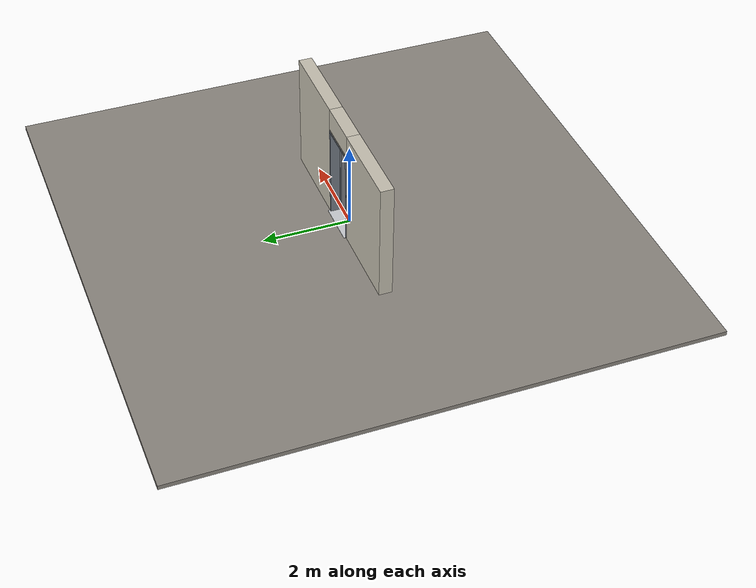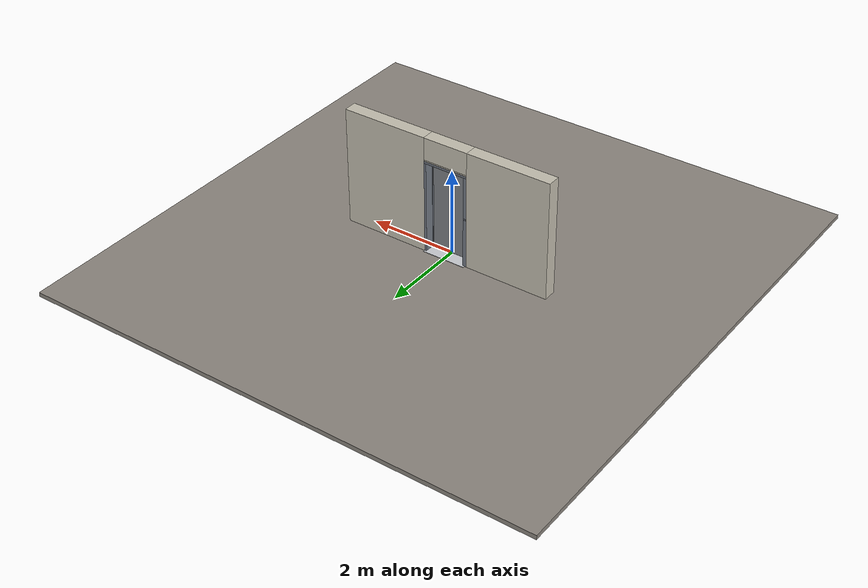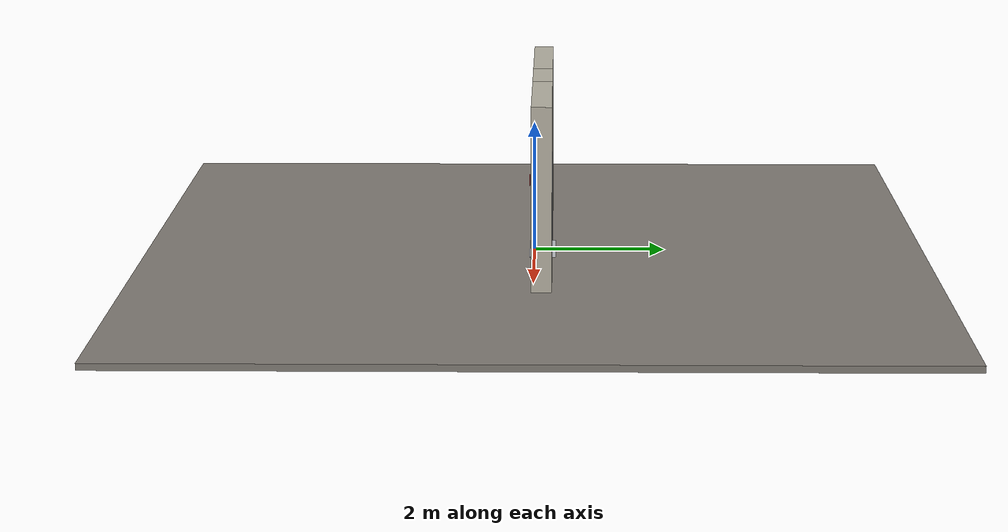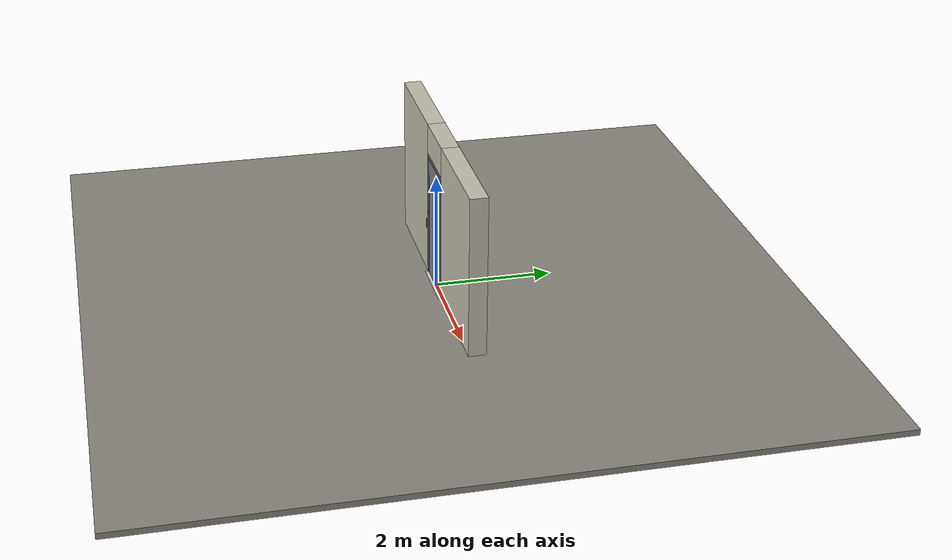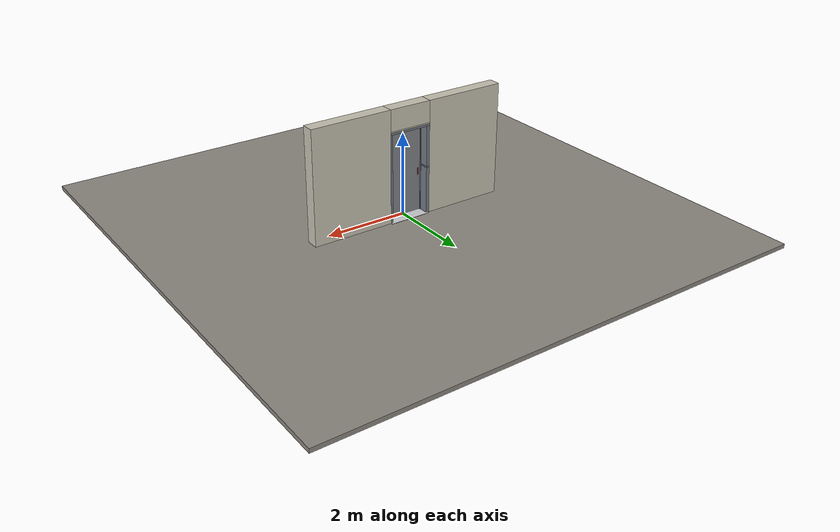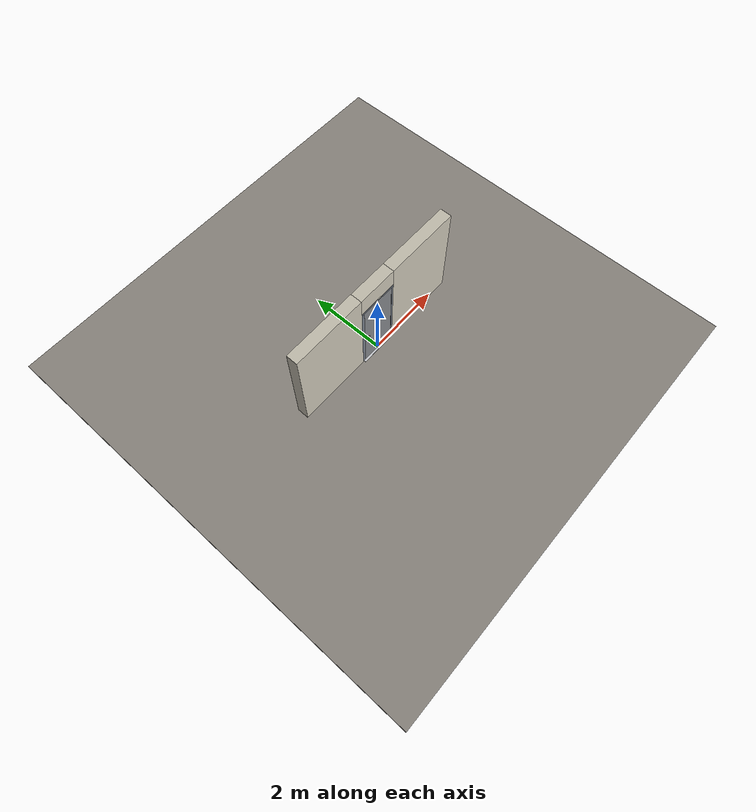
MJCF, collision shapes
<?xml version="1.0" ?>
<mujoco model="db0428_swing_single_minimal">
  <compiler angle="radian" meshdir="../../hardware" texturedir="../../textures" autolimits="true" inertiafromgeom="false"/>
  <option timestep="0.002" integrator="implicitfast" cone="elliptic" impratio="10" noslip_iterations="3">
    <flag multiccd="enable"/>
  </option>
  <size memory="16M"/>
  <default>
    <geom condim="4" solref="0.005 1" solimp="0.95 0.99 0.001"/>
    <joint solreflimit="0.005 1" solimplimit="0.95 0.99 0.001"/>
    <tendon solreflimit="0.005 1"/>
    <equality solref="0.002 1"/>
  </default>
  <visual>
    <headlight ambient="0.4 0.4 0.4" diffuse="0.7 0.7 0.7" specular="0.2 0.2 0.2"/>
    <quality shadowsize="4096"/>
    <map znear="0.01" zfar="60"/>
  </visual>
  <asset>
    <mesh name="pull_1e5d69a91a" file="pull_1e5d69a91a.obj"/>
    <material name="mat_floor" rgba="0.55 0.53 0.5 1" specular="0.2" shininess="0.15" reflectance="0"/>
    <material name="mat_wall" rgba="0.78 0.76 0.7 1" specular="0.2" shininess="0.1" reflectance="0"/>
    <material name="mat_leaf" rgba="0.5 0.51 0.53 1" specular="0.23" shininess="0.51" reflectance="0.02"/>
    <material name="mat_leaf_louver" rgba="0.425 0.433 0.451 1" specular="0.2" shininess="0.4" reflectance="0"/>
    <material name="mat_hinge" rgba="0.65 0.66 0.68 1" specular="0.74" shininess="0.5" reflectance="0.36"/>
    <material name="mat_op_stainless" rgba="0.75 0.76 0.77 1" specular="0.8" shininess="0.65" reflectance="0.4"/>
    <material name="mat_deadbolt" rgba="0.85 0.66 0.3 1" specular="0.8" shininess="0.75" reflectance="0.4"/>
    <material name="mat_frame" rgba="0.45 0.48 0.52 1" specular="0.32" shininess="0.6" reflectance="0.08"/>
    <material name="mat_seal" rgba="0.1 0.1 0.1 1" specular="0.2" shininess="0.1" reflectance="0"/>
    <material name="mat_threshold" rgba="0.8 0.81 0.83 1" specular="0.8" shininess="0.6" reflectance="0.4"/>
    <material name="mat_kick" rgba="0.75 0.76 0.77 1" specular="0.8" shininess="0.65" reflectance="0.4"/>
    <material name="mat_placard" rgba="0.95 0.75 0.05 1" specular="0.2" shininess="0.5" reflectance="0"/>
    <material name="mat_bumper_stop" rgba="0.08 0.08 0.08 1" specular="0.2" shininess="0.1" reflectance="0"/>
    <material name="mat_stop_base" rgba="0.9 0.9 0.92 1" specular="0.8" shininess="0.9" reflectance="0.4"/>
    <texture name="skybox" type="skybox" builtin="gradient" rgb1="0.6 0.7 0.85" rgb2="0.9 0.92 0.95" width="256" height="256"/>
  </asset>
  <worldbody>
    <light name="sun" pos="1.5 -2.5 4" dir="-0.3 0.5 -0.8" directional="true" diffuse="0.8 0.8 0.8" specular="0.3 0.3 0.3" castshadow="true"/>
    <light name="fill" pos="-1.5 2.5 3" dir="0.3 -0.5 -0.7" directional="true" diffuse="0.35 0.35 0.4" castshadow="false"/>
    <camera name="robot_view" pos="0 -2.516812 1.812087" xyaxes="1 0 0 0 0.26963 0.962964" fovy="52"/>
    <camera name="far_view" pos="0 2.758812 1.812087" xyaxes="-1 0 0 0 -0.26963 0.962964" fovy="52"/>
    <camera name="iso" pos="-2.004737 -2.094762 2.234138" xyaxes="0.741536 -0.670913 0 0.242917 0.268487 0.932151" fovy="46"/>
    <camera name="detail_handle" pos="-0.1715 -0.882 1.296" xyaxes="0.97561 0.219512 0 -0.070934 0.315262 0.94635" fovy="38"/>
    <geom name="floor" type="box" size="6 6 0.05" pos="0 0 -0.05" material="mat_floor" group="0" contype="1" conaffinity="1" friction="0.8 0.005 0.0001" density="2400"/>
    <geom name="wall_left" type="box" size="0.97975 0.15 1.3735" pos="-1.52025 0.121 1.3735" material="mat_wall" group="0" contype="1" conaffinity="1" friction="0.6 0.005 0.0001" density="800"/>
    <geom name="wall_right" type="box" size="0.99475 0.15 1.3735" pos="1.50525 0.121 1.3735" material="mat_wall" group="0" contype="1" conaffinity="1" friction="0.6 0.005 0.0001" density="800"/>
    <geom name="wall_header" type="box" size="0.5255 0.15 0.26" pos="-0.015 0.121 2.487" material="mat_wall" group="0" contype="1" conaffinity="1" friction="0.6 0.005 0.0001" density="800"/>
    <geom name="jamb_hinge" type="box" size="0.025 0.15 1.0735" pos="0.4855 0.121 1.0735" material="mat_frame" group="0" contype="1" conaffinity="1" friction="0.6 0.005 0.0001" density="300"/>
    <geom name="strike_1156_wall_n" type="box" size="0.04 0.13075 0.0155" pos="-0.5005 0.14025 1.156" material="mat_frame" group="0" contype="1" conaffinity="1" friction="0.6 0.005 0.0001" density="300"/>
    <geom name="strike_1156_wall_p" type="box" size="0.04 0.00975 0.0155" pos="-0.5005 -0.01925 1.156" material="mat_frame" group="0" contype="1" conaffinity="1" friction="0.6 0.005 0.0001" density="300"/>
    <geom name="strike_1156_back" type="box" size="0.0253 0.0095 0.0155" pos="-0.5152 0 1.156" material="mat_frame" group="0" contype="1" conaffinity="1" friction="0.6 0.005 0.0001" density="300"/>
    <geom name="jamb_strike_0" type="box" size="0.04 0.15 0.57025" pos="-0.5005 0.121 0.57025" material="mat_frame" group="0" contype="1" conaffinity="1" friction="0.6 0.005 0.0001" density="300"/>
    <geom name="jamb_strike_1" type="box" size="0.04 0.15 0.48775" pos="-0.5005 0.121 1.65925" material="mat_frame" group="0" contype="1" conaffinity="1" friction="0.6 0.005 0.0001" density="300"/>
    <geom name="jamb_head" type="box" size="0.5255 0.15 0.025" pos="-0.015 0.121 2.172" material="mat_frame" group="0" contype="1" conaffinity="1" friction="0.6 0.005 0.0001" density="300"/>
    <geom name="head_stud" type="box" size="0.5255 0.15 0.015" pos="-0.015 0.121 2.212" material="mat_wall" group="0" contype="1" conaffinity="1" friction="0.6 0.005 0.0001" density="500"/>
    <geom name="stop_hinge" type="box" size="0.0055 0.016 1.0735" pos="0.455 0.0385 1.0735" material="mat_frame" group="0" contype="1" conaffinity="1" friction="0.6 0.005 0.0001" density="300"/>
    <geom name="stop_strike" type="box" size="0.0055 0.016 1.0735" pos="-0.455 0.0385 1.0735" material="mat_frame" group="0" contype="1" conaffinity="1" friction="0.6 0.005 0.0001" density="300"/>
    <geom name="stop_head" type="box" size="0.4605 0.016 0.0055" pos="0 0.0385 2.1415" material="mat_frame" group="0" contype="1" conaffinity="1" friction="0.6 0.005 0.0001" density="300"/>
    <geom name="threshold" type="box" size="0.5105 0.2 0.004" pos="0 0.121 0.004" material="mat_threshold" group="0" contype="1" conaffinity="1" friction="0.6 0.005 0.0001" density="2700"/>
    <site name="approach_point" pos="0 -1.5 0" quat="1 0 0 0" size="0.05" rgba="0.2 0.9 0.2 0.5" group="4"/>
    <site name="goal_point" pos="0 1.5 0" quat="1 0 0 0" size="0.05" rgba="0.2 0.9 0.2 0.5" group="4"/>
    <site name="door_plane_center" pos="0 0 1.0735" quat="1 0 0 0" size="0.02" rgba="0.2 0.9 0.2 0.5" group="4"/>
    <body name="leaf" pos="0.4605 0 0">
      <inertial pos="-0.466569 0 1.07488" mass="49.950814" quat="0.50032 0.50032 -0.49968 0.49968" diaginertia="3.538999937 18.62171117 22.134400077"/>
      <joint name="leaf_hinge" type="hinge" axis="0 0 1" pos="-0.003 -0.029 0" limited="true" range="0 1.570796" solreflimit="0.02 1" damping="0.318966" frictionloss="1.630428" armature="0.02"/>
      <geom name="leaf_slab" type="box" size="0.457 0.022 1.067" pos="-0.46 0 1.076" material="mat_leaf" group="0" contype="1" conaffinity="1" friction="0.4 0.005 0.0001" density="1"/>
      <geom name="leaf_pull_n" type="mesh" mesh="pull_1e5d69a91a" pos="-0.812 -0.022 1.016" quat="0 0 -0.707107 0.707107" material="mat_op_stainless" group="1" contype="0" conaffinity="0" density="3000"/>
      <geom name="leaf_pull_col_n" type="capsule" size="0.0095 0.08" pos="-0.812 -0.082 1.016" material="mat_op_stainless" group="3" contype="1" conaffinity="1" rgba="0.8 0.3 0.3 0.25" friction="0.7 0.01 0.0001" density="3000"/>
      <geom name="leaf_pull_p" type="mesh" mesh="pull_1e5d69a91a" pos="-0.812 0.022 1.016" quat="0 0 0.707107 0.707107" material="mat_op_stainless" group="1" contype="0" conaffinity="0" density="3000"/>
      <geom name="leaf_pull_col_p" type="capsule" size="0.0095 0.08" pos="-0.812 0.082 1.016" material="mat_op_stainless" group="3" contype="1" conaffinity="1" rgba="0.8 0.3 0.3 0.25" friction="0.7 0.01 0.0001" density="3000"/>
      <site name="leaf_pull_grip_n" pos="-0.812 -0.082 1.016" quat="1 0 0 0" size="0.012" rgba="0.2 0.9 0.2 0.5" group="4"/>
      <site name="leaf_pull_grip_p" pos="-0.812 0.082 1.016" quat="1 0 0 0" size="0.012" rgba="0.2 0.9 0.2 0.5" group="4"/>
      <site name="leaf_edge_mid" pos="-0.917 0 1.067" quat="1 0 0 0" size="0.02" rgba="0.2 0.9 0.2 0.5" group="4"/>
    </body>
  </worldbody>
  <sensor>
    <jointpos name="leaf_hinge_pos" joint="leaf_hinge"/>
    <jointvel name="leaf_hinge_vel" joint="leaf_hinge"/>
  </sensor>
</mujoco>
